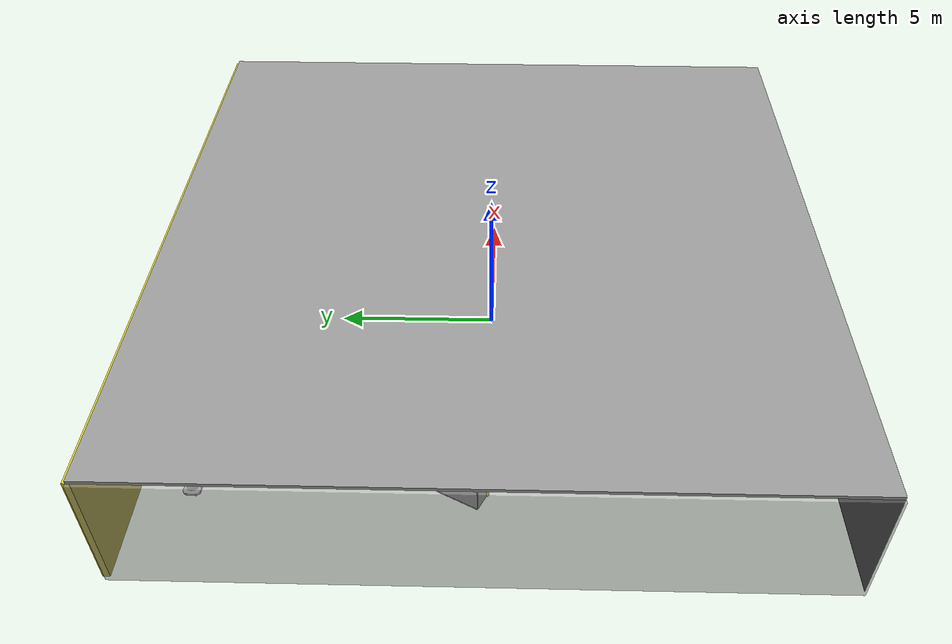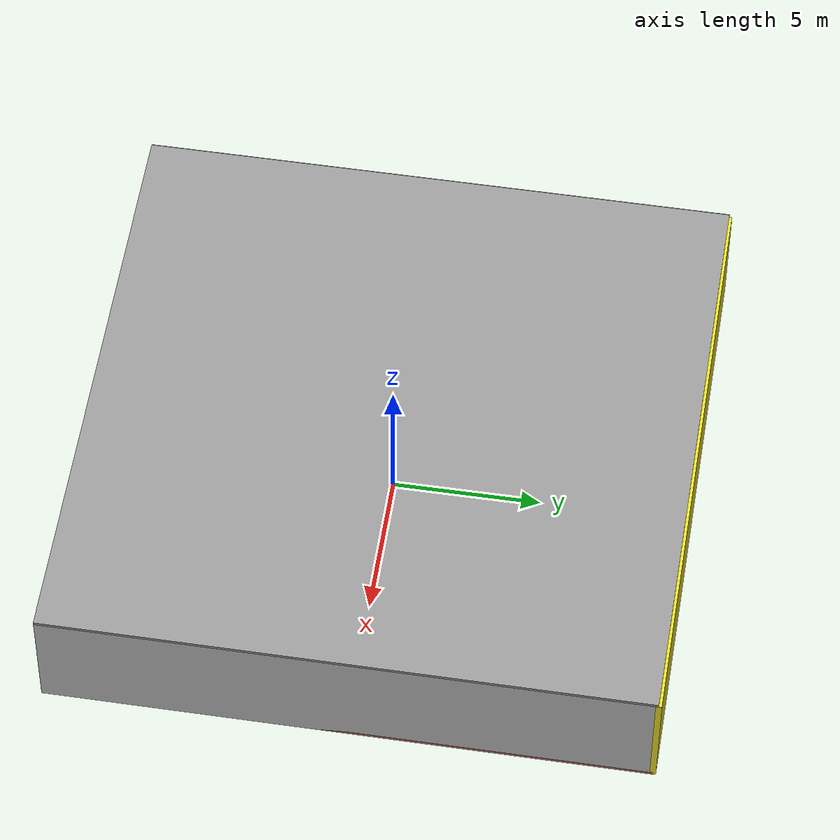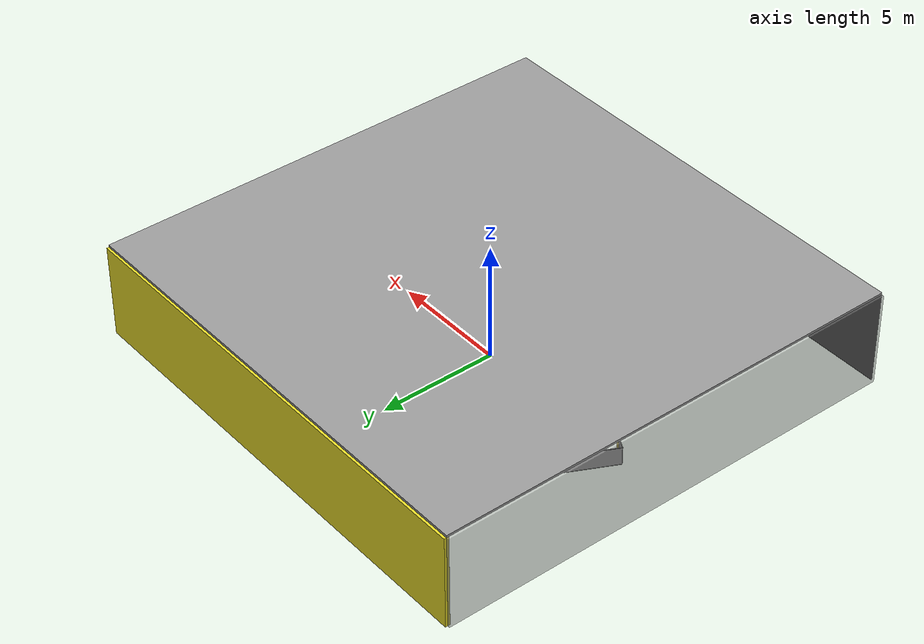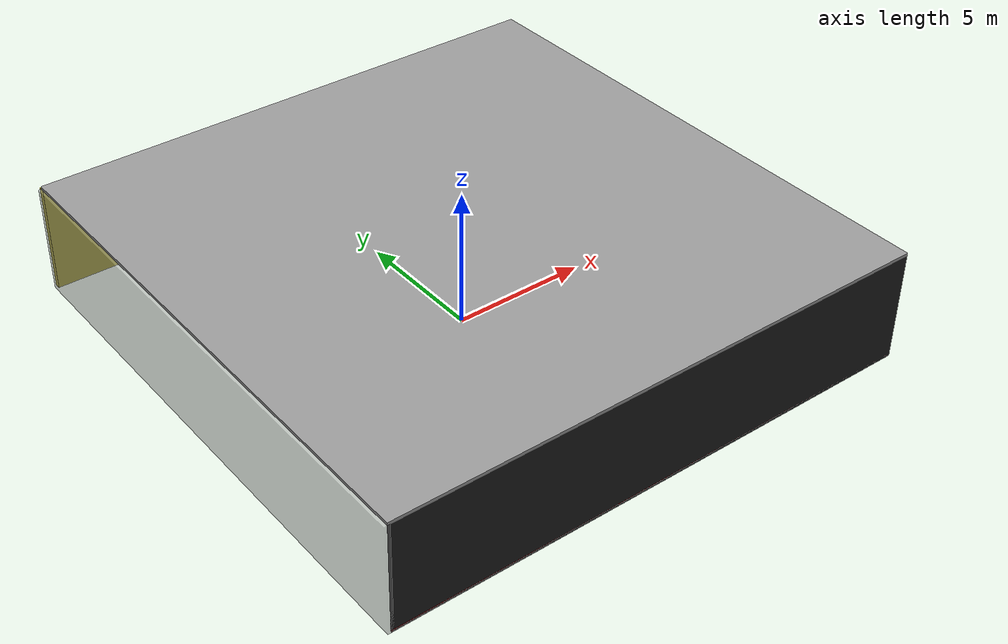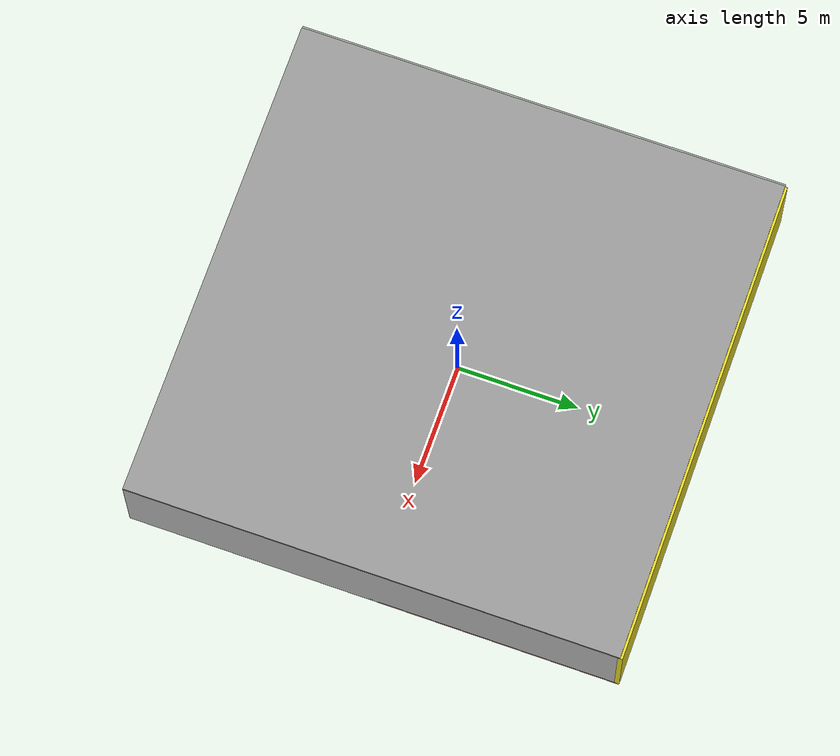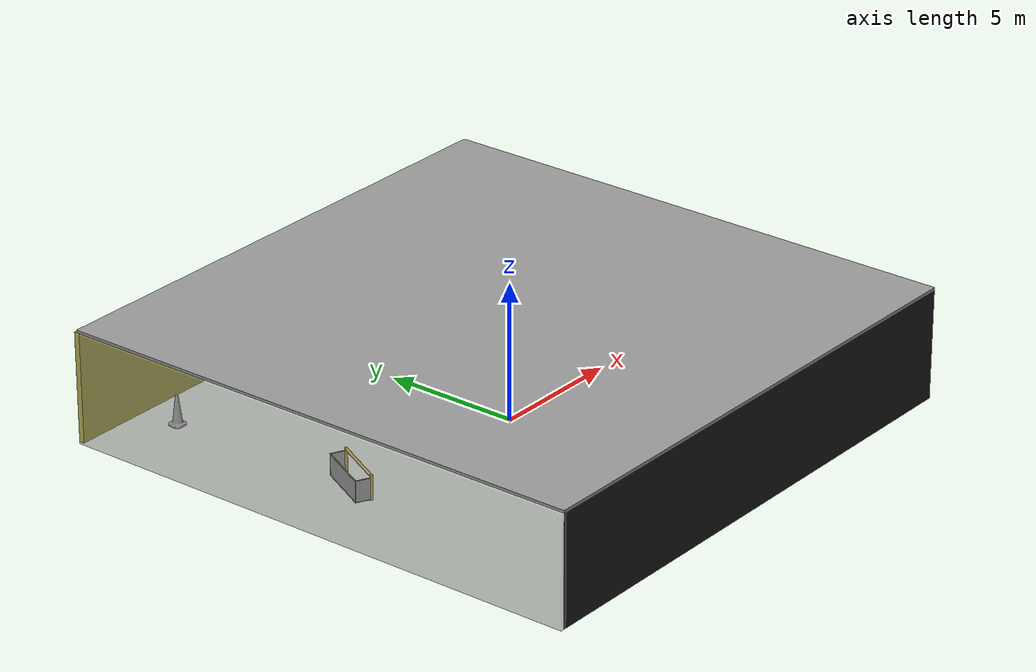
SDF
<sdf version="1.4">
 <world name="default">
  <physics type="ode">
   <max_step_size>0.001</max_step_size>
   <real_time_factor>1</real_time_factor>
   <real_time_update_rate>1000</real_time_update_rate>
   <gravity>0 0 -9.8</gravity>
  </physics>
  <scene><ambient>0.4 0.4 0.4 1</ambient><background>0.7 0.7 0.7 1</background><shadows>1</shadows></scene>
  <model name="Surrounding">
   <static>1</static>
   <link name="Ceiling">
    <collision name="Ceiling_Collision"><geometry><box><size>20 20 0.1</size></box></geometry></collision>
    <visual name="Ceiling_Visual">
     <geometry><box><size>20 20 0.1</size></box></geometry>
     <material>
      <script><uri>file://media/materials/scripts/gazebo.material</uri><name>Gazebo/Grey</name></script>
     </material>
    </visual>
    <pose>0 0 4.05 0 0 0</pose>
   </link>
   <link name="Wall_South">
    <collision name="Wall_South_Collision">
     <geometry><box><size>20 0 4</size></box></geometry>
     <pose>0 0 2 0 -0 0</pose>
    </collision>
    <visual name="Wall_South_Visual">
     <pose>0 0 2 0 -0 0</pose>
     <geometry><box><size>20 0 4</size></box></geometry>
     <material>
      <script><uri>file://media/materials/scripts/gazebo.material</uri><name>Gazebo/Black</name></script>
     </material>
    </visual>
    <velocity_decay><linear>0</linear><angular>0</angular></velocity_decay>
    <pose>0 -10 0 0 -0 0</pose>
   </link>
   <link name="Wall_East">
    <collision name="Wall_21_Collision">
     <geometry><box><size>20 0 4</size></box></geometry>
     <pose>0 0 2 0 -0 0</pose>
    </collision>
    <visual name="Wall_21_Visual">
     <pose>0 0 2 0 -0 0</pose>
     <geometry><box><size>20 0 4</size></box></geometry>
     <material>
      <script><uri>file://media/materials/scripts/gazebo.material</uri><name>Gazebo/LightOn</name></script>
     </material>
    </visual>
    <velocity_decay><linear>0</linear><angular>0</angular></velocity_decay>
    <pose>10 0 0 0 -0 1.5708</pose>
   </link>
   <link name="Wall_North">
    <collision name="Wall_22_Collision">
     <geometry><box><size>20 0.2 4</size></box></geometry>
     <pose>0 0 2 0 -0 0</pose>
    </collision>
    <visual name="Wall_22_Visual">
     <pose>0 0 2 0 -0 0</pose>
     <geometry><box><size>20 0.2 4</size></box></geometry>
     <material>
      <script><uri>file://media/materials/scripts/gazebo.material</uri><name>Gazebo/YellowGlow</name></script>
     </material>
    </visual>
    <velocity_decay><linear>0</linear><angular>0</angular></velocity_decay>
    <pose>0 10 0 0 -0 0</pose>
   </link>
   <link name="Wall_West">
    <collision name="Wall_23_Collision">
     <geometry><box><size>20 0.2 4</size></box></geometry>
     <pose>0 0 2 0 -0 0</pose>
    </collision>
    <visual name="Wall_23_Visual">
     <pose>0 0 2 0 -0 0</pose>
     <geometry><box><size>20 0.2 4</size></box></geometry>
     <material>
      <script><uri>file://media/materials/scripts/gazebo.material</uri><name>Gazebo/GreyTransparent</name></script>
     </material>
    </visual>
    <velocity_decay><linear>0</linear><angular>0</angular></velocity_decay>
    <pose>-10 0 0 0 0 -1.5708</pose>
   </link>
   <link name="Ground_link">
    <collision name="collision">
     <pose>0 0 .05 0 -0 0</pose>
     <geometry><box><size>20 20 0.1</size></box></geometry>
    </collision>
    <visual name="visual">
     <pose>0 0 .05 0 -0 0</pose>
     <geometry><box><size>20 20 0.1</size></box></geometry>
     <material>
      <script><uri>file://media/materials/scripts/gazebo.material</uri><name>Gazebo/RedTransparent</name></script>
     </material>
    </visual>
   </link>
   <static>1</static>
  </model>
  <spherical_coordinates>
   <surface_model>EARTH_WGS84</surface_model>
   <latitude_deg>0</latitude_deg>
   <longitude_deg>0</longitude_deg>
   <elevation>0</elevation>
   <heading_deg>0</heading_deg>
  </spherical_coordinates>
  <light name="lightball_0" type="diffuse">
   <diffuse>0.8 0.8 0.8 1</diffuse>
   <specular>0.2 0.2 0.2 1</specular>
   <attenuation>
    <range>100</range>
    <constant>0.7</constant>
    <linear>0.01</linear>
    <quadratic>0.001</quadratic>
   </attenuation>
   <direction>-0.5 0.1 -0.9</direction>
   <pose>3.81032833127 5.92740011829 1.54024100079 0 0 0</pose>
  </light>
  <light name="lightball_1" type="diffuse">
   <diffuse>0.8 0.8 0.8 1</diffuse>
   <specular>0.2 0.2 0.2 1</specular>
   <attenuation>
    <range>100</range>
    <constant>0.7</constant>
    <linear>0.01</linear>
    <quadratic>0.001</quadratic>
   </attenuation>
   <direction>-0.5 0.1 -0.9</direction>
   <pose>-9.98537912828 -3.3093620724 1.96376174313 0 0 0</pose>
  </light>
  <light name="lightball_2" type="diffuse">
   <diffuse>0.8 0.8 0.8 1</diffuse>
   <specular>0.2 0.2 0.2 1</specular>
   <attenuation>
    <range>100</range>
    <constant>0.7</constant>
    <linear>0.01</linear>
    <quadratic>0.001</quadratic>
   </attenuation>
   <direction>-0.5 0.1 -0.9</direction>
   <pose>0.906550533171 -4.57579376812 3.61553451516 0 0 0</pose>
  </light>
  <light name="lightball_3" type="diffuse">
   <diffuse>0.8 0.8 0.8 1</diffuse>
   <specular>0.2 0.2 0.2 1</specular>
   <attenuation>
    <range>100</range>
    <constant>0.7</constant>
    <linear>0.01</linear>
    <quadratic>0.001</quadratic>
   </attenuation>
   <direction>-0.5 0.1 -0.9</direction>
   <pose>-6.97826051676 -8.96493687053 0.648563409742 0 0 0</pose>
  </light>
  <light name="lightball_4" type="diffuse">
   <diffuse>0.8 0.8 0.8 1</diffuse>
   <specular>0.2 0.2 0.2 1</specular>
   <attenuation>
    <range>100</range>
    <constant>0.7</constant>
    <linear>0.01</linear>
    <quadratic>0.001</quadratic>
   </attenuation>
   <direction>-0.5 0.1 -0.9</direction>
   <pose>9.28682326865 3.62610212322 3.55547696503 0 0 0</pose>
  </light>
  <light name="lightball_5" type="diffuse">
   <diffuse>0.8 0.8 0.8 1</diffuse>
   <specular>0.2 0.2 0.2 1</specular>
   <attenuation>
    <range>100</range>
    <constant>0.7</constant>
    <linear>0.01</linear>
    <quadratic>0.001</quadratic>
   </attenuation>
   <direction>-0.5 0.1 -0.9</direction>
   <pose>5.21595183726 -5.13923545039 3.67057282936 0 0 0</pose>
  </light>
  <light name="lightball_6" type="diffuse">
   <diffuse>0.8 0.8 0.8 1</diffuse>
   <specular>0.2 0.2 0.2 1</specular>
   <attenuation>
    <range>100</range>
    <constant>0.7</constant>
    <linear>0.01</linear>
    <quadratic>0.001</quadratic>
   </attenuation>
   <direction>-0.5 0.1 -0.9</direction>
   <pose>7.55055131834 5.91262067437 3.77172929538 0 0 0</pose>
  </light>
  <light name="lightball_7" type="diffuse">
   <diffuse>0.8 0.8 0.8 1</diffuse>
   <specular>0.2 0.2 0.2 1</specular>
   <attenuation>
    <range>100</range>
    <constant>0.7</constant>
    <linear>0.01</linear>
    <quadratic>0.001</quadratic>
   </attenuation>
   <direction>-0.5 0.1 -0.9</direction>
   <pose>-5.22229990085 -2.77877256005 1.03129253447 0 0 0</pose>
  </light>
  <light name="lightball_8" type="diffuse">
   <diffuse>0.8 0.8 0.8 1</diffuse>
   <specular>0.2 0.2 0.2 1</specular>
   <attenuation>
    <range>100</range>
    <constant>0.7</constant>
    <linear>0.01</linear>
    <quadratic>0.001</quadratic>
   </attenuation>
   <direction>-0.5 0.1 -0.9</direction>
   <pose>-1.00192376437 -0.600465342935 3.63901636707 0 0 0</pose>
  </light>
  <light name="lightball_9" type="diffuse">
   <diffuse>0.8 0.8 0.8 1</diffuse>
   <specular>0.2 0.2 0.2 1</specular>
   <attenuation>
    <range>100</range>
    <constant>0.7</constant>
    <linear>0.01</linear>
    <quadratic>0.001</quadratic>
   </attenuation>
   <direction>-0.5 0.1 -0.9</direction>
   <pose>-9.83136961733 -4.46395355604 1.93312856511 0 0 0</pose>
  </light>
  <include>
   <uri>model://robocup_3Dsim_goal</uri>
   <pose>-6.67274625338 0.906354926236 0 0 0 2.66939538479</pose>
  </include>
  <include>
   <uri>model://construction_cone</uri>
   <pose>-7.09891313218 8.39226510578 0 0 0 1.50863899146</pose>
  </include>
  <include><uri>model://cabinet</uri><pose>-0.652412365552 5.59258893691 0 0 0 0.675159245654</pose></include>
  <include>
   <uri>model://textured_shapes</uri>
   <pose>5.23244914354 -6.69494452256 0 0 0 0.620263932649</pose>
  </include>
 </world>
</sdf>

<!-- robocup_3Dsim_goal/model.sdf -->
<sdf version="1.5">
  <model name="robocup_3d_goal">
    <static>true</static>
    <link name="left_post">
      <pose>0 1.05 0.45 0 0 0</pose>
      <collision name="collision">
        <geometry>
          <cylinder>
            <radius>0.05</radius>
            <length>0.9</length>
          </cylinder>
        </geometry>
      </collision>
      <visual name="visual">
        <geometry>
          <cylinder>
            <radius>0.05</radius>
            <length>0.9</length>
          </cylinder>
        </geometry>
        <material>
          <script>
            <uri>file://media/materials/scripts/gazebo.material</uri>
            <name>Gazebo/ZincYellow</name>
          </script>
        </material>
      </visual>
    </link>
    <link name="left_support_horiz_lower">
      <pose>0.30 1.05 0.01 0 0 0</pose>
      <collision name="collision">
        <geometry>
          <box>
            <size>0.50 0.02 0.02</size>
          </box>
        </geometry>
      </collision>
      <visual name="visual">
        <geometry>
          <box>
            <size>0.50 0.02 0.02</size>
          </box>
        </geometry>
        <material>
          <script>
            <uri>file://media/materials/scripts/gazebo.material</uri>
            <name>Gazebo/White</name>
          </script>
        </material>
      </visual>
    </link>
    <link name="left_support_horiz_upper">
      <pose>0.30 1.05 0.79 0 0 0</pose>
      <collision name="collision">
        <geometry>
          <box>
            <size>0.50 0.02 0.02</size>
          </box>
        </geometry>
      </collision>
      <visual name="visual">
        <geometry>
          <box>
            <size>0.50 0.02 0.02</size>
          </box>
        </geometry>
        <material>
          <script>
            <uri>file://media/materials/scripts/gazebo.material</uri>
            <name>Gazebo/White</name>
          </script>
        </material>
      </visual>
    </link>
    <link name="left_support_vertical">
      <pose>0.56 1.05 0.4 0 1.5708 0</pose>
      <collision name="collision">
        <geometry>
          <box>
            <size>0.80 0.02 0.02</size>
          </box>
        </geometry>
      </collision>
      <visual name="visual">
        <geometry>
          <box>
            <size>0.80 0.02 0.02</size>
          </box>
        </geometry>
        <material>
          <script>
            <uri>file://media/materials/scripts/gazebo.material</uri>
            <name>Gazebo/White</name>
          </script>
        </material>
      </visual>
    </link>
    <link name="right_support_horiz_lower">
      <pose>0.30 -1.05 0.01 0 0 0</pose>
      <collision name="collision">
        <geometry>
          <box>
            <size>0.50 0.02 0.02</size>
          </box>
        </geometry>
      </collision>
      <visual name="visual">
        <geometry>
          <box>
            <size>0.50 0.02 0.02</size>
          </box>
        </geometry>
        <material>
          <script>
            <uri>file://media/materials/scripts/gazebo.material</uri>
            <name>Gazebo/White</name>
          </script>
        </material>
      </visual>
    </link>
    <link name="right_support_horiz_upper">
      <pose>0.30 -1.05 0.79 0 0 0</pose>
      <collision name="collision">
        <geometry>
          <box>
            <size>0.50 0.02 0.02</size>
          </box>
        </geometry>
      </collision>
      <visual name="visual">
        <geometry>
          <box>
            <size>0.50 0.02 0.02</size>
          </box>
        </geometry>
        <material>
          <script>
            <uri>file://media/materials/scripts/gazebo.material</uri>
            <name>Gazebo/White</name>
          </script>
        </material>
      </visual>
    </link>
    <link name="right_support_vertical">
      <pose>0.56 -1.05 0.4 0 1.5708 0</pose>
      <collision name="collision">
        <geometry>
          <box>
            <size>0.80 0.02 0.02</size>
          </box>
        </geometry>
      </collision>
      <visual name="visual">
        <geometry>
          <box>
            <size>0.80 0.02 0.02</size>
          </box>
        </geometry>
        <material>
          <script>
            <uri>file://media/materials/scripts/gazebo.material</uri>
            <name>Gazebo/White</name>
          </script>
        </material>
      </visual>
    </link>
    <link name="center_support_horiz_lower">
      <pose>0.56 0 0.01 0 1.5708 0</pose>
      <collision name="collision">
        <geometry>
          <box>
            <size>0.02 2.08 0.02</size>
          </box>
        </geometry>
      </collision>
      <visual name="visual">
        <geometry>
          <box>
            <size>0.02 2.08 0.02</size>
          </box>
        </geometry>
        <material>
          <script>
            <uri>file://media/materials/scripts/gazebo.material</uri>
            <name>Gazebo/White</name>
          </script>
        </material>
      </visual>
    </link>
    <link name="center_support_horiz_upper">
      <pose>0.56 0 0.79 0 1.5708 0</pose>
      <collision name="collision">
        <geometry>
          <box>
            <size>0.02 2.08 0.02</size>
          </box>
        </geometry>
      </collision>
      <visual name="visual">
        <geometry>
          <box>
            <size>0.02 2.08 0.02</size>
          </box>
        </geometry>
        <material>
          <script>
            <uri>file://media/materials/scripts/gazebo.material</uri>
            <name>Gazebo/White</name>
          </script>
        </material>
      </visual>
    </link>
    <link name="right_post">
      <pose>0 -1.05 0.45 0 0 0</pose>
      <collision name="collision">
        <geometry>
          <cylinder>
            <radius>0.05</radius>
            <length>0.9</length>
          </cylinder>
        </geometry>
      </collision>
      <visual name="visual">
        <geometry>
          <cylinder>
            <radius>0.05</radius>
            <length>0.9</length>
          </cylinder>
        </geometry>
        <material>
          <script>
            <uri>file://media/materials/scripts/gazebo.material</uri>
            <name>Gazebo/ZincYellow</name>
          </script>
        </material>
      </visual>
    </link>
    <link name="crossbar">
      <pose>0 0 0.85 1.57 1.57 0</pose>
      <collision name="collision">
        <geometry>
          <cylinder>
            <radius>0.05</radius>
            <length>2.0</length>
          </cylinder>
        </geometry>
      </collision>
      <visual name="visual">
        <geometry>
          <cylinder>
            <radius>0.05</radius>
            <length>2.0</length>
          </cylinder>
        </geometry>
        <material>
          <script>
            <uri>file://media/materials/scripts/gazebo.material</uri>
            <name>Gazebo/ZincYellow</name>
          </script>
        </material>
      </visual>
    </link>
    <link name="center_net">
      <pose>0.56 0 0.40 0 0 0</pose>
      <collision name="collision">
        <geometry>
          <box>
            <size>0.01 2.1 0.80</size>
          </box>
        </geometry>
      </collision>
      <visual name="visual">
        <geometry>
          <box>
            <size>0.01 2.1 0.80</size>
          </box>
        </geometry>
        <material>
          <script>
            <uri>model://../model_source/models/robocup09_spl_field/materials/scripts/</uri>
            <uri>model://../model_source/models/robocup09_spl_field/materials/textures/</uri>
            <name>RoboCup/Net</name>
          </script>
        </material>
      </visual>
    </link>
    <link name="left_net">
      <pose>0.30 1.05 0.40 0 0 0</pose>
      <collision name="collision">
        <geometry>
          <box>
            <size>0.50 0.01 0.76</size>
          </box>
        </geometry>
      </collision>
      <visual name="visual">
        <geometry>
          <box>
            <size>0.50 0.01 0.76</size>
          </box>
        </geometry>
        <material>
          <script>
            <uri>model://../model_source/models/robocup09_spl_field/materials/scripts/</uri>
            <uri>model://../model_source/models/robocup09_spl_field/materials/textures/</uri>
            <name>RoboCup/Net</name>
          </script>
        </material>
      </visual>
    </link>
    <link name="right_net">
      <pose>0.30 -1.05 0.40 0 0 0</pose>
      <collision name="collision">
        <geometry>
          <box>
            <size>0.50 0.01 0.76</size>
          </box>
        </geometry>
      </collision>
      <visual name="visual">
        <geometry>
          <box>
            <size>0.50 0.01 0.76</size>
          </box>
        </geometry>
        <material>
          <script>
            <uri>model://../model_source/models/robocup09_spl_field/materials/scripts/</uri>
            <uri>model://../model_source/models/robocup09_spl_field/materials/textures/</uri>
            <name>RoboCup/Net</name>
          </script>
        </material>
      </visual>
    </link>
  </model>
</sdf>

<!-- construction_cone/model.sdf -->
<sdf version="1.5">
  <model name="Construction Cone">
    <link name="link">
      <collision name="collision">
        <geometry>
          <mesh>
            <scale>10 10 10</scale>
            <uri>file://isr-testbed/construction_cone/meshes/construction_cone.dae</uri>
          </mesh>
        </geometry>
      </collision>
      <visual name="visual">
        <geometry>
          <mesh>
            <scale>10 10 10</scale>
            <uri>file://isr-testbed/construction_cone/meshes/construction_cone.dae</uri>
          </mesh>
        </geometry>
      </visual>
    </link>
  </model>
</sdf>

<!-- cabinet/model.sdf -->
<sdf version="1.5">
  <model name="cabinet">
    <static>true</static>
    <link name="cabinet_bottom_plate">
      <inertial>
        <pose>0 0 -1 0 0 0</pose>
        <inertia>
          <ixx>2.050000</ixx>
          <ixy>0</ixy>
          <ixz>0</ixz>
          <iyy>2.050000</iyy>
          <iyz>0</iyz>
          <izz>2.050000</izz>
        </inertia>
        <mass>25.000000</mass>
      </inertial>
      <collision name="cabinet_bottom_plate_geom">
        <pose>0 0 0.010000 0 0 0</pose>
        <geometry>
          <box>
            <size>0.450000 0.450000 0.020000</size>
          </box>
        </geometry>
      </collision>
      <visual name="cabinet_bottom_plate_geom_visual">
        <pose>0 0 0.010000 0 0 0</pose>
        <geometry>
          <box>
            <size>0.450000 0.450000 0.020000</size>
          </box>
        </geometry>
        <material>
          <script>
            <uri>model://media/materials/scripts/gazebo.material</uri>
            <name>Gazebo/Wood</name>
          </script>
        </material>
      </visual>
      <collision name="cabinet_bottom_plate_geom_cabinet_back_plate">
        <pose>0.235000 0 0.510000 0 0 0</pose>
        <geometry>
          <box>
            <size>0.020000 0.450000 1.020000</size>
          </box>
        </geometry>
      </collision>
      <visual name="cabinet_bottom_plate_geom_cabinet_back_plate_visual">
        <pose>0.235000 0 0.510000 0 0 0</pose>
        <geometry>
          <box>
            <size>0.020000 0.450000 1.020000</size>
          </box>
        </geometry>
        <material>
          <script>
            <uri>model://media/materials/scripts/gazebo.material</uri>
            <name>Gazebo/Wood</name>
          </script>
        </material>
      </visual>
      <collision name="cabinet_bottom_plate_geom_cabinet_left_plate">
        <pose>0 0.235000 0.510000 0 0 0</pose>
        <geometry>
          <box>
            <size>0.450000 0.020000 1.020000</size>
          </box>
        </geometry>
      </collision>
      <visual name="cabinet_bottom_plate_geom_cabinet_left_plate_visual">
        <pose>0 0.235000 0.510000 0 0 0</pose>
        <geometry>
          <box>
            <size>0.450000 0.020000 1.020000</size>
          </box>
        </geometry>
        <material>
          <script>
            <uri>model://media/materials/scripts/gazebo.material</uri>
            <name>Gazebo/Wood</name>
          </script>
        </material>
      </visual>
      <collision name="cabinet_bottom_plate_geom_cabinet_middle_plate">
        <pose>0 0 0.510000 0 0 0</pose>
        <geometry>
          <box>
            <size>0.450000 0.450000 0.020000</size>
          </box>
        </geometry>
      </collision>
      <visual name="cabinet_bottom_plate_geom_cabinet_middle_plate_visual">
        <pose>0 0 0.510000 0 0 0</pose>
        <geometry>
          <box>
            <size>0.450000 0.450000 0.020000</size>
          </box>
        </geometry>
        <material>
          <script>
            <uri>model://media/materials/scripts/gazebo.material</uri>
            <name>Gazebo/Wood</name>
          </script>
        </material>
      </visual>
      <collision name="cabinet_bottom_plate_geom_cabinet_right_plate">
        <pose>0 -0.235000 0.510000 0 0 0</pose>
        <geometry>
          <box>
            <size>0.450000 0.020000 1.020000</size>
          </box>
        </geometry>
      </collision>
      <visual name="cabinet_bottom_plate_geom_cabinet_right_plate_visual">
        <pose>0 -0.235000 0.510000 0 0 0</pose>
        <geometry>
          <box>
            <size>0.450000 0.020000 1.020000</size>
          </box>
        </geometry>
        <material>
          <script>
            <uri>model://media/materials/scripts/gazebo.material</uri>
            <name>Gazebo/Wood</name>
          </script>
        </material>
      </visual>
      <collision name="cabinet_bottom_plate_geom_cabinet_top_plate">
        <pose>0 0 1.010000 0 0 0</pose>
        <geometry>
          <box>
            <size>0.450000 0.450000 0.020000</size>
          </box>
        </geometry>
      </collision>
      <visual name="cabinet_bottom_plate_geom_cabinet_top_plate_visual">
        <pose>0 0 1.010000 0 0 0</pose>
        <geometry>
          <box>
            <size>0.450000 0.450000 0.020000</size>
          </box>
        </geometry>
        <material>
          <script>
            <uri>model://media/materials/scripts/gazebo.material</uri>
            <name>Gazebo/Wood</name>
          </script>
        </material>
      </visual>
    </link>
  </model>
</sdf>

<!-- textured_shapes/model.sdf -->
<sdf version="1.6">
  <model name="textured_shapes">
    <pose>0 0 0.5 0 0 0</pose>
    <link name="box">
      <pose>0 -1.5 0 0 0 0</pose>
      <collision name="collision">
        <geometry>
          <box>
            <size>1 1 1</size>
          </box>
        </geometry>
      </collision>
      <visual name="visual">
        <geometry>
          <box>
            <size>1 1 1</size>
          </box>
        </geometry>
        <material>
          <script>
            <uri>model://../model_source/models/textured_shapes/materials/scripts</uri>
            <uri>model://../model_source/models/textured_shapes/materials/textures</uri>
            <name>TexturedShape/Squares</name>
          </script>
        </material>
      </visual>
    </link>
    <link name="sphere">
      <collision name="collision">
        <geometry>
          <sphere>
            <radius>0.5</radius>
          </sphere>
        </geometry>
      </collision>
      <visual name="visual">
        <geometry>
          <sphere>
            <radius>0.5</radius>
          </sphere>
        </geometry>
        <material>
          <script>
            <uri>model://../model_source/models/textured_shapes/materials/scripts</uri>
            <uri>model://../model_source/models/textured_shapes/materials/textures</uri>
            <name>TexturedShape/Squares</name>
          </script>
        </material>
      </visual>
    </link>
    <link name="cylinder">
      <pose>0 1.5 0 0 0 0</pose>
      <collision name="collision">
        <geometry>
          <cylinder>
            <radius>0.5</radius>
            <length>1</length>
          </cylinder>
        </geometry>
      </collision>
      <visual name="visual">
        <geometry>
          <cylinder>
            <radius>0.5</radius>
            <length>1</length>
          </cylinder>
        </geometry>
        <material>
          <script>
            <uri>model://../model_source/models/textured_shapes/materials/scripts</uri>
            <uri>model://../model_source/models/textured_shapes/materials/textures</uri>
            <name>TexturedShape/Squares</name>
          </script>
        </material>
      </visual>
    </link>
  </model>
</sdf>
